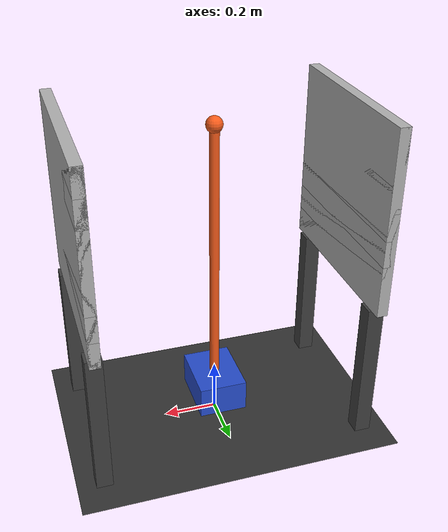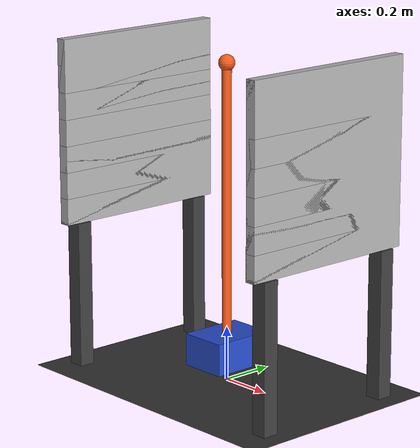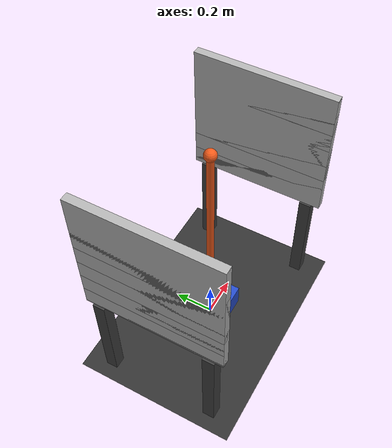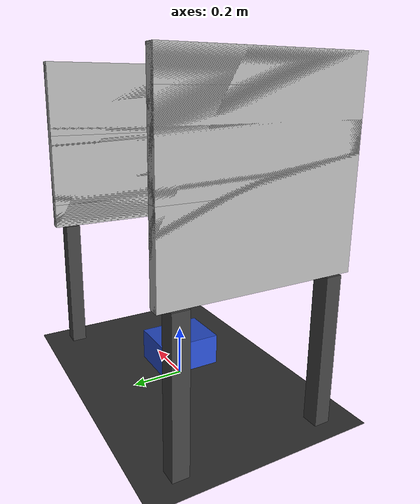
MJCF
<mujoco model="soft_wall_cartpole">
  <compiler angle="radian" autolimits="true"/>
  <option timestep="0.002" gravity="0 0 -9.81" integrator="RK4"/>

  <default>
    <joint damping="0.02"/>
    <!-- Soft, damped compliant contact. -->
    <geom friction="0.8 0.05 0.01" solref="0.10 1" solimp="0.70 0.90 0.01"/>
  </default>

  <worldbody>
    <geom name="floor" type="plane" size="3 3 0.1" rgba="0.2 0.2 0.2 1"/>
    <light pos="0 0 3" directional="true"/>
    <camera name="overview" pos="2.4 -3.0 1.7" xyaxes="0.78 0.62 0 -0.28 0.35 0.89"/>

    <!-- The cart does not collide with the walls. -->
    <body name="cart" pos="0 0 0.12">
      <joint name="cart_slide" type="slide" axis="1 0 0" range="-0.5 0.5"/>
      <geom name="cart_geom" type="box" size="0.09 0.12 0.06" mass="1" contype="0" conaffinity="0" rgba="0.15 0.3 0.8 1"/>
      <body name="pole" pos="0 0 0.06">
        <!-- Zero angle is the upright, unstable configuration. -->
        <!-- Positive theta moves the tip left: tip_x = p - l*sin(theta). -->
        <joint name="pole_hinge" type="hinge" axis="0 -1 0" damping="0.03"/>
        <!-- Massless visual rod plus a point-mass approximation at the tip.
             This matches the point-mass pole assumed by the MIQP matrices. -->
        <geom name="pole_geom" type="capsule" fromto="0 0 0 0 0 1" size="0.018" mass="0" rgba="0.95 0.35 0.1 1"/>
        <geom name="tip_mass" type="sphere" pos="0 0 1" size="0.03" mass="1" rgba="0.95 0.35 0.1 1"/>
        <site name="pole_tip" pos="0 0 1" size="0.025" rgba="0.9 0.9 0.1 1"/>
      </body>
    </body>

    <body name="left_wall_frame" pos="-0.5 0 0">
      <geom name="left_wall" type="box" pos="0 0 0.895" size="0.02 0.35 0.345" rgba="0.7 0.7 0.7 1"/>
      <geom name="left_wall_seg0" type="box" pos="0 0 0.5993" size="0.02 0.35 0.0493" contype="0" conaffinity="0" rgba="0.7 0.7 0.7 1"/>
      <geom name="left_wall_seg1" type="box" pos="0 0 0.6979" size="0.02 0.35 0.0493" contype="0" conaffinity="0" rgba="0.7 0.7 0.7 1"/>
      <geom name="left_wall_seg2" type="box" pos="0 0 0.7964" size="0.02 0.35 0.0493" contype="0" conaffinity="0" rgba="0.7 0.7 0.7 1"/>
      <geom name="left_wall_seg3" type="box" pos="0 0 0.8950" size="0.02 0.35 0.0493" contype="0" conaffinity="0" rgba="0.7 0.7 0.7 1"/>
      <geom name="left_wall_seg4" type="box" pos="0 0 0.9936" size="0.02 0.35 0.0493" contype="0" conaffinity="0" rgba="0.7 0.7 0.7 1"/>
      <geom name="left_wall_seg5" type="box" pos="0 0 1.0921" size="0.02 0.35 0.0493" contype="0" conaffinity="0" rgba="0.7 0.7 0.7 1"/>
      <geom name="left_wall_seg6" type="box" pos="0 0 1.1907" size="0.02 0.35 0.0493" contype="0" conaffinity="0" rgba="0.7 0.7 0.7 1"/>
      <geom name="left_wall_leg_front" type="box" pos="0 -0.28 0.275" size="0.03 0.03 0.275"
            contype="0" conaffinity="0" rgba="0.25 0.25 0.25 1"/>
      <geom name="left_wall_leg_back" type="box" pos="0 0.28 0.275" size="0.03 0.03 0.275"
            contype="0" conaffinity="0" rgba="0.25 0.25 0.25 1"/>
    </body>
    <body name="right_wall_frame" pos="0.5 0 0">
      <geom name="right_wall" type="box" pos="0 0 0.895" size="0.02 0.35 0.345" rgba="0.7 0.7 0.7 1"/>
      <geom name="right_wall_seg0" type="box" pos="0 0 0.5993" size="0.02 0.35 0.0493" contype="0" conaffinity="0" rgba="0.7 0.7 0.7 1"/>
      <geom name="right_wall_seg1" type="box" pos="0 0 0.6979" size="0.02 0.35 0.0493" contype="0" conaffinity="0" rgba="0.7 0.7 0.7 1"/>
      <geom name="right_wall_seg2" type="box" pos="0 0 0.7964" size="0.02 0.35 0.0493" contype="0" conaffinity="0" rgba="0.7 0.7 0.7 1"/>
      <geom name="right_wall_seg3" type="box" pos="0 0 0.8950" size="0.02 0.35 0.0493" contype="0" conaffinity="0" rgba="0.7 0.7 0.7 1"/>
      <geom name="right_wall_seg4" type="box" pos="0 0 0.9936" size="0.02 0.35 0.0493" contype="0" conaffinity="0" rgba="0.7 0.7 0.7 1"/>
      <geom name="right_wall_seg5" type="box" pos="0 0 1.0921" size="0.02 0.35 0.0493" contype="0" conaffinity="0" rgba="0.7 0.7 0.7 1"/>
      <geom name="right_wall_seg6" type="box" pos="0 0 1.1907" size="0.02 0.35 0.0493" contype="0" conaffinity="0" rgba="0.7 0.7 0.7 1"/>
      <geom name="right_wall_leg_front" type="box" pos="0 -0.28 0.275" size="0.03 0.03 0.275"
            contype="0" conaffinity="0" rgba="0.25 0.25 0.25 1"/>
      <geom name="right_wall_leg_back" type="box" pos="0 0.28 0.275" size="0.03 0.03 0.275"
            contype="0" conaffinity="0" rgba="0.25 0.25 0.25 1"/>
    </body>
  </worldbody>

  <actuator>
    <motor name="cart_force" joint="cart_slide" gear="1" ctrllimited="true" ctrlrange="-10 10"/>
  </actuator>
</mujoco>
